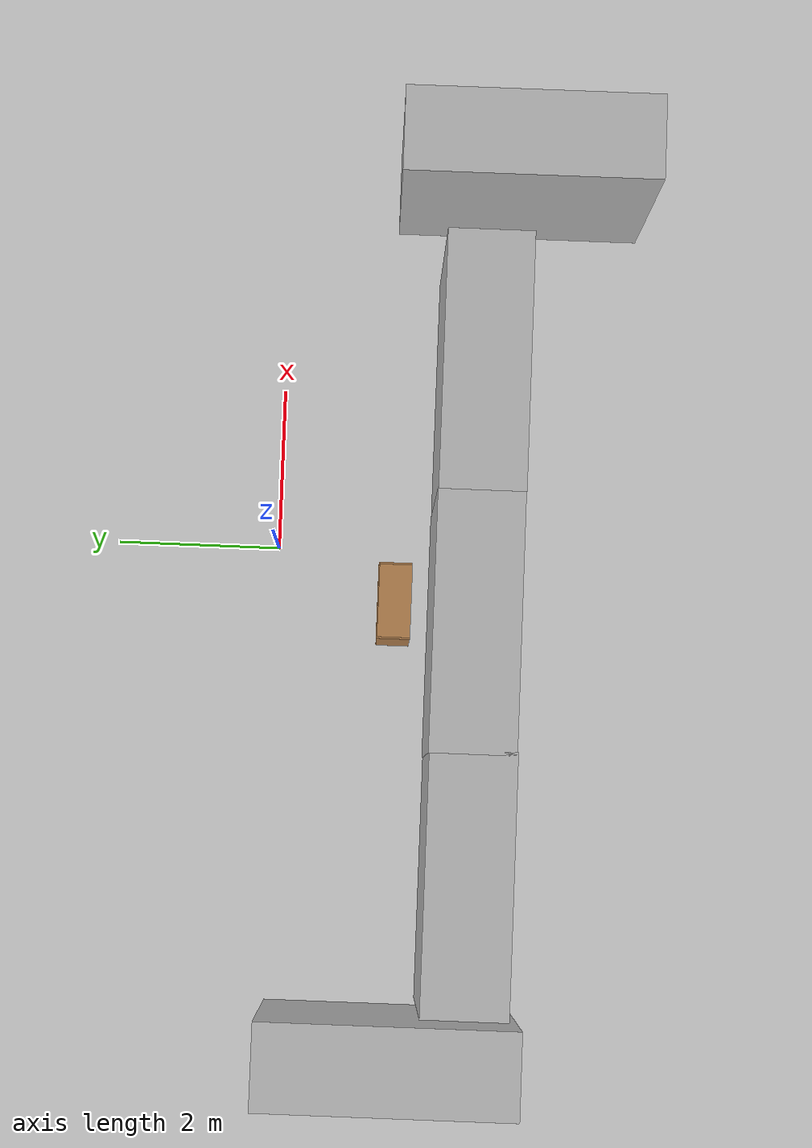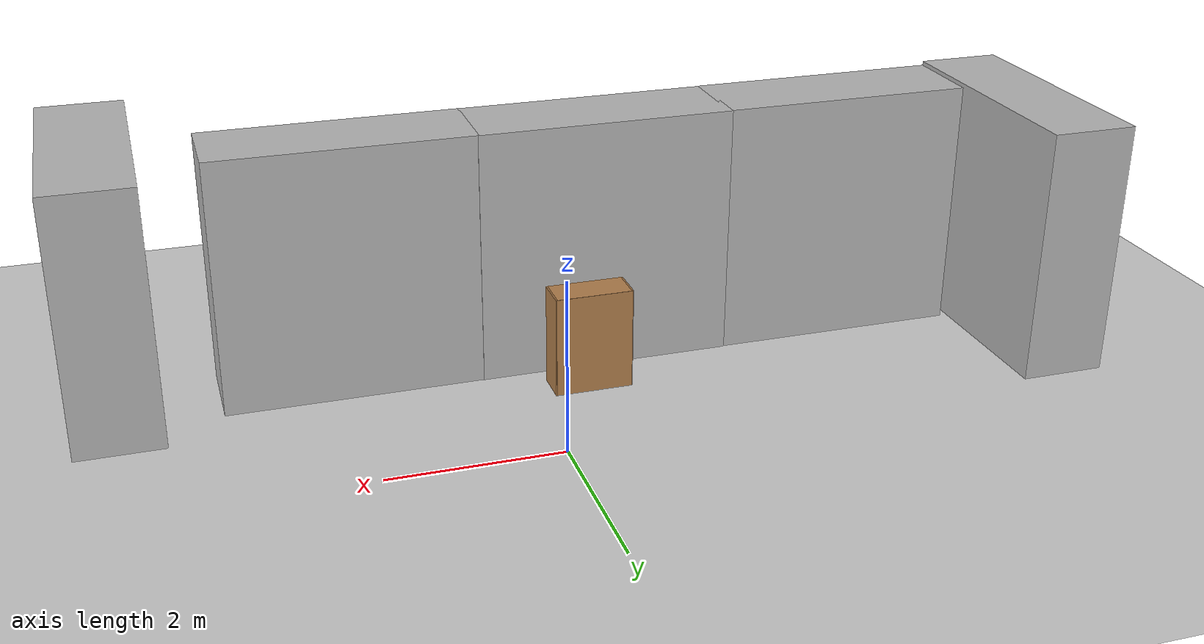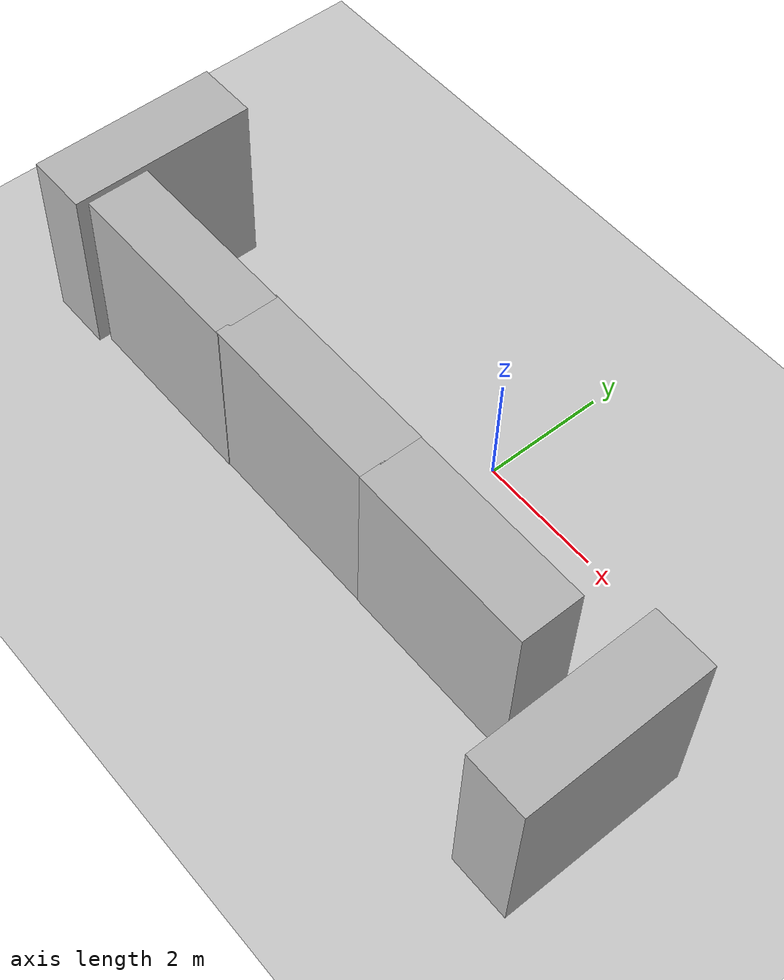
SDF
<sdf version="1.7">
 <world name="default">
  <physics name="1ms" type="ignored">
   <max_step_size>0.001</max_step_size>
   <real_time_factor>1.0</real_time_factor>
  </physics>
  <plugin filename="gz-sim-physics-system" name="gz::sim::systems::Physics"/>
  <plugin filename="gz-sim-user-commands-system" name="gz::sim::systems::UserCommands"/>
  <plugin filename="gz-sim-scene-broadcaster-system" name="gz::sim::systems::SceneBroadcaster"/>
  <plugin filename="gz-sim-sensors-system" name="gz::sim::systems::Sensors">
   <render_engine>ogre2</render_engine>
  </plugin>
  <plugin filename="gz-sim-contact-system" name="gz::sim::systems::Contact"/>
  <light type="directional" name="sun">
   <pose>0 0 10 0 0 0</pose>
   <diffuse>0.8 0.8 0.8 1</diffuse>
   <specular>0.2 0.2 0.2 1</specular>
   <attenuation>
    <range>1000</range>
    <constant>0.9</constant>
    <linear>0.01</linear>
    <quadratic>0.001</quadratic>
   </attenuation>
   <direction>-0.5 0.1 -0.9</direction>
  </light>
  <model name="ground_plane">
   <static>true</static>
   <link name="link">
    <collision name="collision">
     <geometry><plane><normal>0 0 1</normal><size>100 100</size></plane></geometry>
    </collision>
    <visual name="visual">
     <geometry><plane><normal>0 0 1</normal><size>100 100</size></plane></geometry>
     <material>
      <ambient>0.8 0.8 0.8 1</ambient>
      <diffuse>0.8 0.8 0.8 1</diffuse>
      <specular>0.8 0.8 0.8 1</specular>
     </material>
    </visual>
   </link>
  </model>
  <gravity>0 0 -9.8</gravity>
  <magnetic_field>6e-06 2.3e-05 -4.2e-05</magnetic_field>
  <atmosphere type="adiabatic"/>
  <scene><ambient>0.4 0.4 0.4 1</ambient><background>0.7 0.7 0.7 1</background><shadows>1</shadows></scene>
  <audio><device>default</device></audio>
  <spherical_coordinates>
   <surface_model>EARTH_WGS84</surface_model>
   <latitude_deg>0</latitude_deg>
   <longitude_deg>0</longitude_deg>
   <elevation>0</elevation>
   <heading_deg>0</heading_deg>
  </spherical_coordinates>
  <model name="bookshelf_2">
   <static>1</static>
   <link name="link">
    <inertial><mass>1</mass></inertial>
    <collision name="back">
     <pose>0 0.005 0.6 0 -0 0</pose>
     <geometry><box><size>0.9 0.01 1.2</size></box></geometry>
    </collision>
    <visual name="visual1">
     <pose>0 0.005 0.6 0 -0 0</pose>
     <geometry><box><size>0.9 0.01 1.2</size></box></geometry>
     <material>
      <script><uri>file://media/materials/scripts/gazebo.material</uri><name>Gazebo/Wood</name></script>
     </material>
    </visual>
    <collision name="left_side">
     <pose>0.45 -0.195 0.6 0 -0 0</pose>
     <geometry><box><size>0.02 0.4 1.2</size></box></geometry>
    </collision>
    <visual name="visual2">
     <pose>0.45 -0.195 0.6 0 -0 0</pose>
     <geometry><box><size>0.02 0.4 1.2</size></box></geometry>
     <material>
      <script><uri>file://media/materials/scripts/gazebo.material</uri><name>Gazebo/Wood</name></script>
     </material>
    </visual>
    <collision name="right_side">
     <pose>-0.45 -0.195 0.6 0 -0 0</pose>
     <geometry><box><size>0.02 0.4 1.2</size></box></geometry>
    </collision>
    <visual name="visual3">
     <pose>-0.45 -0.195 0.6 0 -0 0</pose>
     <geometry><box><size>0.02 0.4 1.2</size></box></geometry>
     <material>
      <script><uri>file://media/materials/scripts/gazebo.material</uri><name>Gazebo/Wood</name></script>
     </material>
    </visual>
    <collision name="bottom">
     <pose>0 -0.195 0.03 0 -0 0</pose>
     <geometry><box><size>0.88 0.4 0.06</size></box></geometry>
    </collision>
    <visual name="visual4">
     <pose>0 -0.195 0.03 0 -0 0</pose>
     <geometry><box><size>0.88 0.4 0.06</size></box></geometry>
     <material>
      <script><uri>file://media/materials/scripts/gazebo.material</uri><name>Gazebo/Wood</name></script>
     </material>
    </visual>
    <collision name="top">
     <pose>0 -0.195 1.19 0 -0 0</pose>
     <geometry><box><size>0.88 0.4 0.02</size></box></geometry>
    </collision>
    <visual name="visual5">
     <pose>0 -0.195 1.19 0 -0 0</pose>
     <geometry><box><size>0.88 0.4 0.02</size></box></geometry>
     <material>
      <script><uri>file://media/materials/scripts/gazebo.material</uri><name>Gazebo/Wood</name></script>
     </material>
    </visual>
    <collision name="low_shelf">
     <pose>0 -0.195 0.43 0 -0 0</pose>
     <geometry><box><size>0.88 0.4 0.02</size></box></geometry>
    </collision>
    <visual name="visual6">
     <pose>0 -0.195 0.43 0 -0 0</pose>
     <geometry><box><size>0.88 0.4 0.02</size></box></geometry>
     <material>
      <script><uri>file://media/materials/scripts/gazebo.material</uri><name>Gazebo/Wood</name></script>
     </material>
    </visual>
    <collision name="high_shelf">
     <pose>0 -0.195 0.8 0 -0 0</pose>
     <geometry><box><size>0.88 0.4 0.02</size></box></geometry>
    </collision>
    <visual name="visual7">
     <pose>0 -0.195 0.8 0 -0 0</pose>
     <geometry><box><size>0.88 0.4 0.02</size></box></geometry>
     <material>
      <script><uri>file://media/materials/scripts/gazebo.material</uri><name>Gazebo/Wood</name></script>
     </material>
    </visual>
   </link>
   <pose>-0.700899 -1.26307 0 0 -0 0</pose>
  </model>
  <model name="brick_box_3x1x3">
   <static>1</static>
   <link name="chassis">
    <pose>0 0 1.5 0 -0 0</pose>
    <collision name="collision"><geometry><box><size>3 1 3</size></box></geometry></collision>
    <visual name="visual">
     <geometry><mesh><uri>model://brick_box_3x1x3/meshes/simple_box.dae</uri><scale>3 1 3</scale></mesh></geometry>
     <material>
      <script>
       <uri>model://brick_box_3x1x3/materials/scripts</uri>
       <uri>model://brick_box_3x1x3/materials/textures</uri>
       <name>BrickBox/Diffuse</name>
      </script>
     </material>
    </visual>
   </link>
   <pose>-1.04922 -2.38296 0 0 -0 0</pose>
  </model>
  <model name="brick_box_3x1x3_0">
   <static>1</static>
   <link name="chassis">
    <pose>0 0 1.5 0 -0 0</pose>
    <collision name="collision"><geometry><box><size>3 1 3</size></box></geometry></collision>
    <visual name="visual">
     <geometry><mesh><uri>model://brick_box_3x1x3/meshes/simple_box.dae</uri><scale>3 1 3</scale></mesh></geometry>
     <material>
      <script>
       <uri>model://brick_box_3x1x3/materials/scripts</uri>
       <uri>model://brick_box_3x1x3/materials/textures</uri>
       <name>BrickBox/Diffuse</name>
      </script>
     </material>
    </visual>
   </link>
   <pose>1.93471 -2.38865 0 0 -0 0</pose>
  </model>
  <model name="brick_box_3x1x3_1">
   <static>1</static>
   <link name="chassis">
    <pose>0 0 1.5 0 -0 0</pose>
    <collision name="collision"><geometry><box><size>3 1 3</size></box></geometry></collision>
    <visual name="visual">
     <geometry><mesh><uri>model://brick_box_3x1x3/meshes/simple_box.dae</uri><scale>3 1 3</scale></mesh></geometry>
     <material>
      <script>
       <uri>model://brick_box_3x1x3/materials/scripts</uri>
       <uri>model://brick_box_3x1x3/materials/textures</uri>
       <name>BrickBox/Diffuse</name>
      </script>
     </material>
    </visual>
   </link>
   <pose>-4.00474 -2.39328 0 0 -0 0</pose>
  </model>
  <model name="brick_box_3x1x3_1_clone">
   <static>1</static>
   <link name="chassis">
    <pose>0 0 1.5 0 -0 0</pose>
    <collision name="collision"><geometry><box><size>3 1 3</size></box></geometry></collision>
    <visual name="visual">
     <geometry><mesh><uri>model://brick_box_3x1x3/meshes/simple_box.dae</uri><scale>3 1 3</scale></mesh></geometry>
     <material>
      <script>
       <uri>model://brick_box_3x1x3/materials/scripts</uri>
       <uri>model://brick_box_3x1x3/materials/textures</uri>
       <name>BrickBox/Diffuse</name>
      </script>
     </material>
    </visual>
   </link>
   <pose>-6.095 -1.54447 0 0 0 -1.56937</pose>
  </model>
  <model name="brick_box_3x1x3_1_clone_clone">
   <static>1</static>
   <link name="chassis">
    <pose>0 0 1.5 0 -0 0</pose>
    <collision name="collision"><geometry><box><size>3 1 3</size></box></geometry></collision>
    <visual name="visual">
     <geometry><mesh><uri>model://brick_box_3x1x3/meshes/simple_box.dae</uri><scale>3 1 3</scale></mesh></geometry>
     <material>
      <script>
       <uri>model://brick_box_3x1x3/materials/scripts</uri>
       <uri>model://brick_box_3x1x3/materials/textures</uri>
       <name>BrickBox/Diffuse</name>
      </script>
     </material>
    </visual>
   </link>
   <pose>4.58775 -2.84479 0 0 0 -1.56937</pose>
  </model>
 </world>
</sdf>
